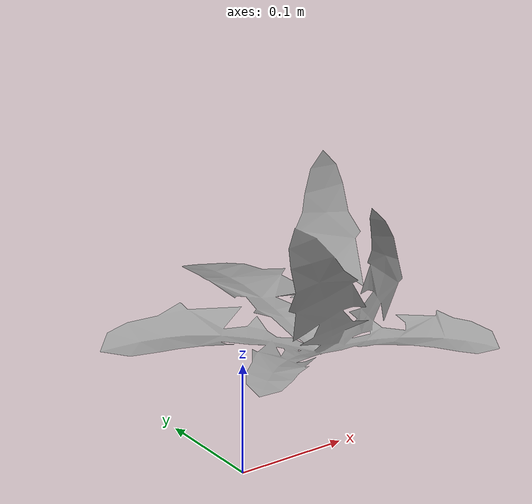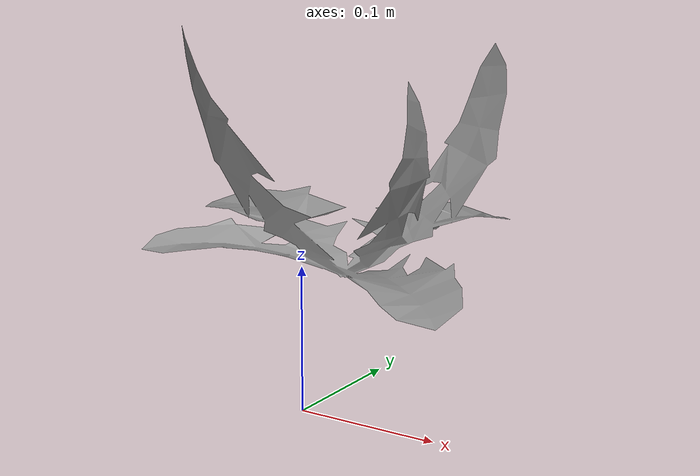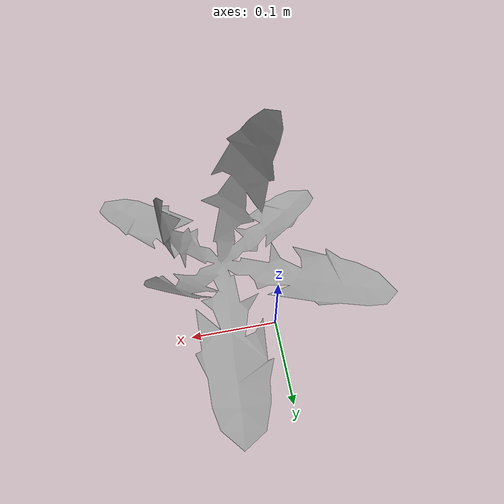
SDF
<?xml version='1.0'?>
<sdf version='1.5'>
  <model name='big_plant'>
    <link name='link_0'>
      <pose frame=''>0 0 0.111949 0 -0 0</pose>
      <inertial>
        <mass>1e-08</mass>
        <inertia>
          <ixx>0.166667</ixx>
          <ixy>0</ixy>
          <ixz>0</ixz>
          <iyy>0.166667</iyy>
          <iyz>0</iyz>
          <izz>0.166667</izz>
        </inertia>
        <pose frame=''>0 0 0 0 -0 0</pose>
      </inertial>
      <self_collide>0</self_collide>
      <kinematic>0</kinematic>
      <gravity>1</gravity>
      <visual name='visual'>
        <pose frame=''>0 0 0 0 -0 0</pose>
        <geometry>
          <mesh>
            <uri>/media/alireza/CCCE40F4CE40D7FA/Gitlab/mp-agribot/code/catkin_ws/src/agribot_gazebo/STL files models/big_plant.stl</uri>
            <scale>1 1 1</scale>
          </mesh>
        </geometry>
        <material>
          <lighting>1</lighting>
          <script>
            <uri>file://media/materials/scripts/gazebo.material</uri>
            <name>Gazebo/Grey</name>
          </script>
          <ambient>0.3 0.3 0.3 1</ambient>
          <diffuse>0.7 0.7 0.7 1</diffuse>
          <specular>0.01 1 0.01 1</specular>
          <emissive>0 1 0 1</emissive>
          <shader type='vertex'>
            <normal_map>__default__</normal_map>
          </shader>
        </material>
        <cast_shadows>1</cast_shadows>
        <transparency>0</transparency>
      </visual>
    </link>
    <static>1</static>
    <allow_auto_disable>1</allow_auto_disable>
  </model>
</sdf>
